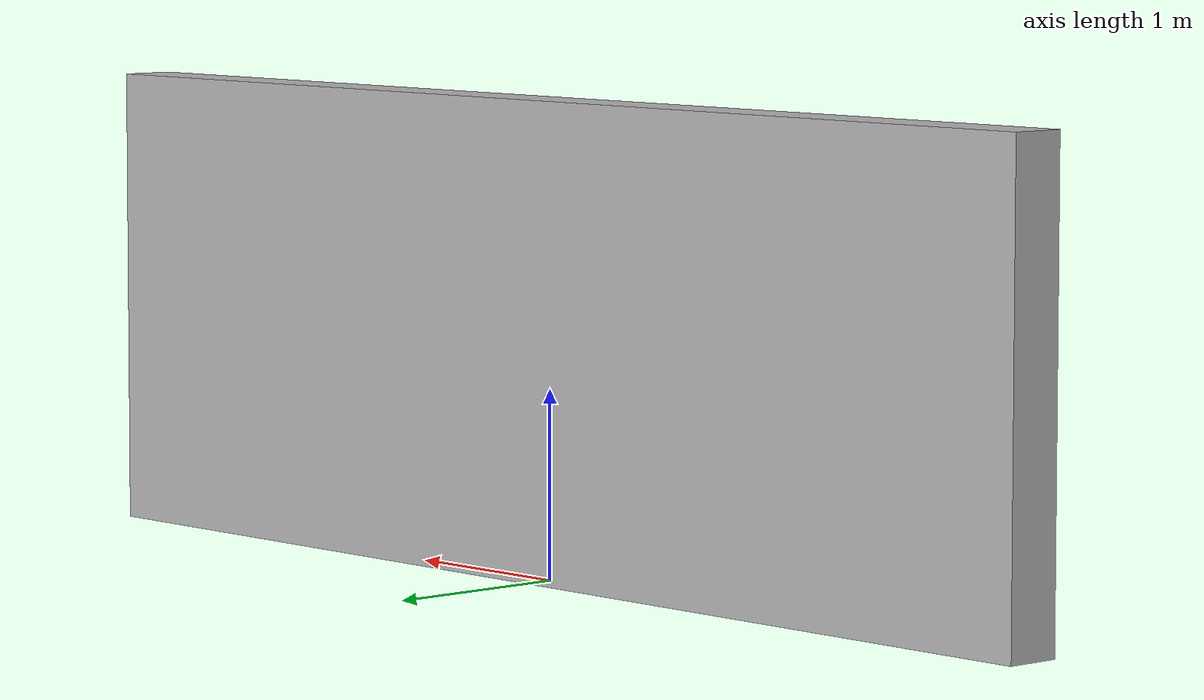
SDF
<?xml version="1.0" ?>
<sdf version="1.5">
  <model name="corridor_wall2">
    <static>true</static>
    <link name="link">
      <pose>0 0 1.25 0 0 0</pose>
      <collision name="collision">
        <geometry>
          <box>
            <size>6.8 0.3 2.5</size>
          </box>
        </geometry>
      </collision>
      <visual name="visual">
        <cast_shadows>false</cast_shadows>
        <geometry>
          <box>
            <size>6.8 0.3 2.5</size>
          </box>
        </geometry>
        <material>
          <script>
            <uri>model://corridor_wall2/materials/scripts</uri>
            <uri>model://corridor_wall2/materials/textures</uri>
            <name>vrc/corridor_wall2</name>
          </script>
        </material>
      </visual>
    </link>
  </model>
</sdf>
